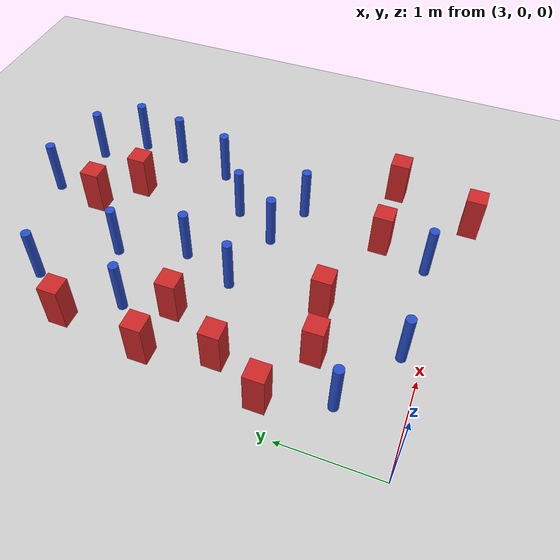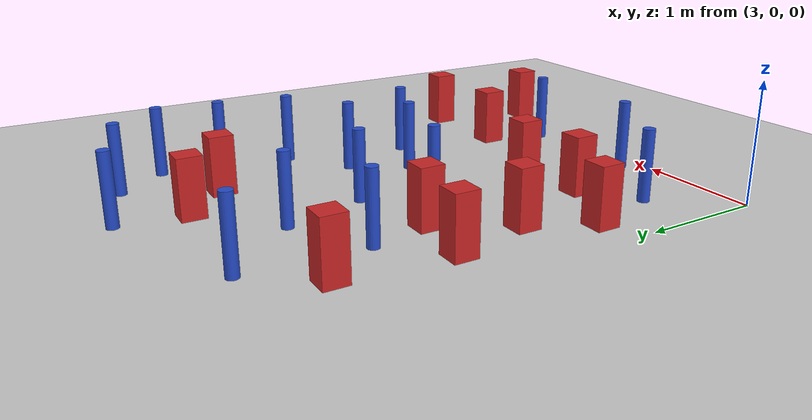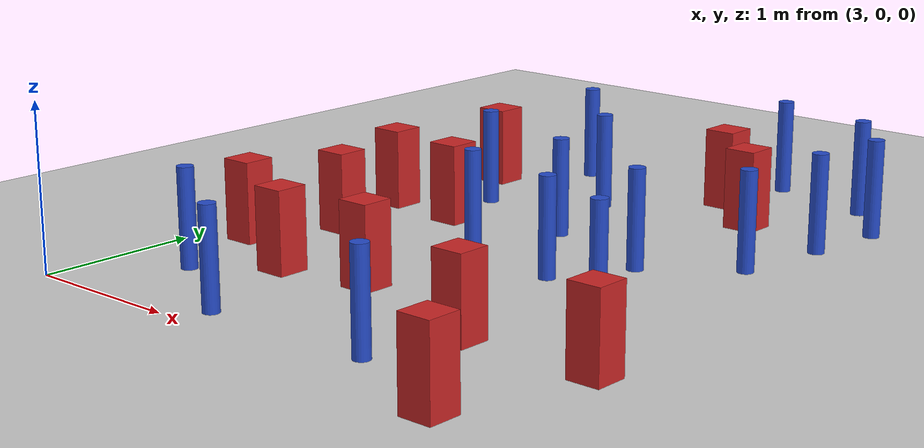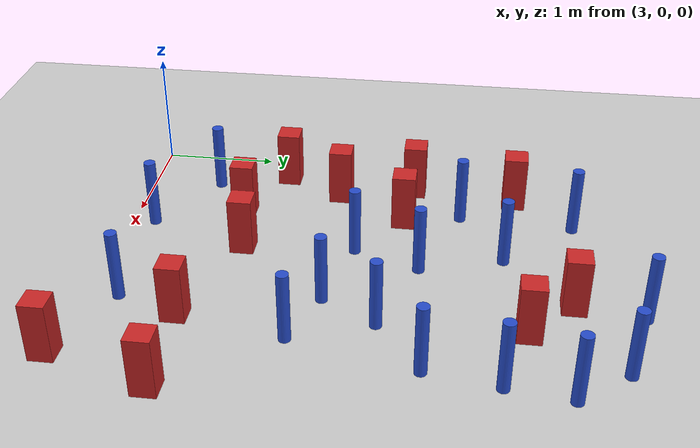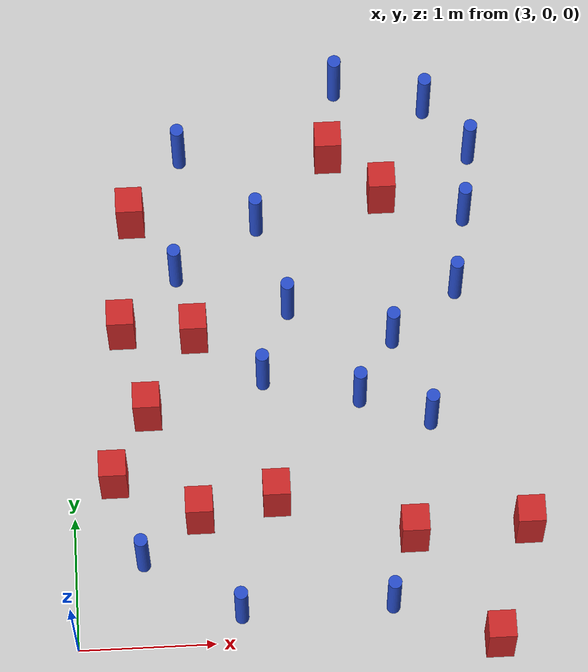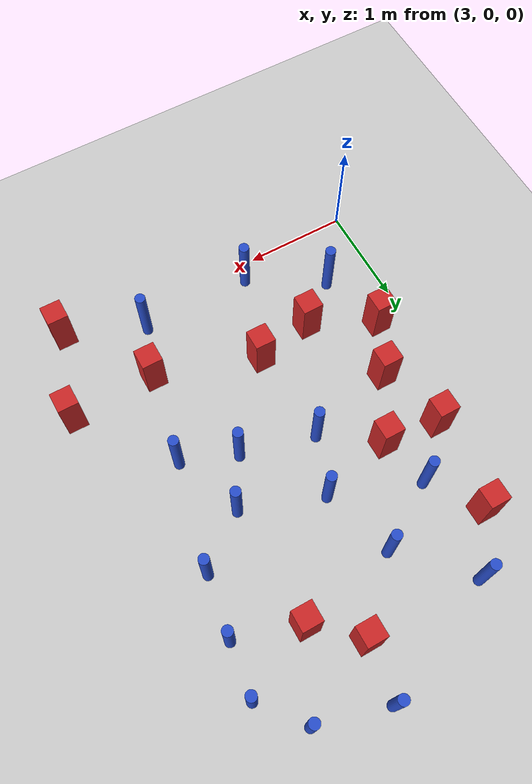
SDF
<sdf version="1.6">
 <world name="default">
  <model name="ground_plane">
   <static>1</static>
   <link name="link">
    <collision name="collision">
     <geometry><plane><normal>0 0 1</normal><size>100 100</size></plane></geometry>
     <surface><friction><ode><mu>100</mu><mu2>50</mu2></ode></friction></surface>
    </collision>
    <visual name="visual">
     <cast_shadows>0</cast_shadows>
     <geometry><plane><normal>0 0 1</normal><size>100 100</size></plane></geometry>
     <material>
      <ambient>1.0 1.0 1.0 1.0</ambient>
      <diffuse>0.8 0.8 0.8 1.0</diffuse>
      <specular>0.01 0.01 0.01 1.000000</specular>
     </material>
    </visual>
   </link>
  </model>
  <model name="pole_obstacle7">
   <static>true</static>
   <pose>4.42884117087 1.99683691813 7.38925637345e-09 -8.471706928e-08 1.24976765177e-08 -1.74513093012e-07</pose>
   <link name="link">
    <pose>0 0 0.3 0 -0 0</pose>
    <inertial>
     <mass>1</mass>
     <inertia><ixx>0.145833</ixx><ixy>0</ixy><ixz>0</ixz><iyy>0.145833</iyy><iyz>0</iyz><izz>0.125</izz></inertia>
    </inertial>
    <collision name="collision">
     <geometry><cylinder><radius>0.05</radius><length>.6</length></cylinder></geometry>
    </collision>
    <visual name="visual">
     <geometry><cylinder><radius>0.05</radius><length>.6</length></cylinder></geometry>
     <material>
      <script><name>Gazebo/Blue</name><uri>file://media/materials/scripts/gazebo.material</uri></script>
     </material>
    </visual>
   </link>
  </model>
  <model name="square_post_obstacle18">
   <static>true</static>
   <pose>4.48623797648 1.04986090024 1.91545236811e-07 -7.35059704564e-06 1.12565212e-07 2.39332434364e-05</pose>
   <link name="link">
    <pose>0 0 0.25 0 -0 0</pose>
    <inertial>
     <mass>100</mass>
     <inertia>
      <ixx>0.166667</ixx>
      <ixy>0</ixy>
      <ixz>0</ixz>
      <iyy>0.166667</iyy>
      <iyz>0</iyz>
      <izz>0.166667</izz>
     </inertia>
    </inertial>
    <collision name="collision"><geometry><box><size>.2 .2 .5</size></box></geometry></collision>
    <visual name="visual">
     <geometry><box><size>.2 .2 .5</size></box></geometry>
     <material>
      <script><name>Gazebo/Red</name><uri>file://media/materials/scripts/gazebo.material</uri></script>
     </material>
    </visual>
   </link>
  </model>
  <model name="square_post_obstacle21">
   <static>true</static>
   <pose>6.04395570483 -0.102435734392 1.91545236811e-07 -7.35059704564e-06 1.12565212e-07 2.39332434364e-05</pose>
   <link name="link">
    <pose>0 0 0.25 0 -0 0</pose>
    <inertial>
     <mass>100</mass>
     <inertia>
      <ixx>0.166667</ixx>
      <ixy>0</ixy>
      <ixz>0</ixz>
      <iyy>0.166667</iyy>
      <iyz>0</iyz>
      <izz>0.166667</izz>
     </inertia>
    </inertial>
    <collision name="collision"><geometry><box><size>.2 .2 .5</size></box></geometry></collision>
    <visual name="visual">
     <geometry><box><size>.2 .2 .5</size></box></geometry>
     <material>
      <script><name>Gazebo/Red</name><uri>file://media/materials/scripts/gazebo.material</uri></script>
     </material>
    </visual>
   </link>
  </model>
  <model name="pole_obstacle19">
   <static>true</static>
   <pose>5.0812405203 4.34473684918 7.38925637345e-09 -8.47170692796e-08 1.24976764786e-08 -1.74513093032e-07</pose>
   <link name="link">
    <pose>0 0 0.3 0 -0 0</pose>
    <inertial>
     <mass>1</mass>
     <inertia><ixx>0.145833</ixx><ixy>0</ixy><ixz>0</ixz><iyy>0.145833</iyy><iyz>0</iyz><izz>0.125</izz></inertia>
    </inertial>
    <collision name="collision">
     <geometry><cylinder><radius>0.05</radius><length>.6</length></cylinder></geometry>
    </collision>
    <visual name="visual">
     <geometry><cylinder><radius>0.05</radius><length>.6</length></cylinder></geometry>
     <material>
      <script><name>Gazebo/Blue</name><uri>file://media/materials/scripts/gazebo.material</uri></script>
     </material>
    </visual>
   </link>
  </model>
  <model name="square_post_obstacle30">
   <static>true</static>
   <pose>5.47710392444 0.726197041636 1.91545236811e-07 -7.35059704564e-06 1.12565212e-07 2.39332434364e-05</pose>
   <link name="link">
    <pose>0 0 0.25 0 -0 0</pose>
    <inertial>
     <mass>100</mass>
     <inertia>
      <ixx>0.166667</ixx>
      <ixy>0</ixy>
      <ixz>0</ixz>
      <iyy>0.166667</iyy>
      <iyz>0</iyz>
      <izz>0.166667</izz>
     </inertia>
    </inertial>
    <collision name="collision"><geometry><box><size>.2 .2 .5</size></box></geometry></collision>
    <visual name="visual">
     <geometry><box><size>.2 .2 .5</size></box></geometry>
     <material>
      <script><name>Gazebo/Red</name><uri>file://media/materials/scripts/gazebo.material</uri></script>
     </material>
    </visual>
   </link>
  </model>
  <model name="pole_obstacle23">
   <static>true</static>
   <pose>3.81328017638 2.8599224622 7.38925637345e-09 -8.47170692798e-08 1.24976764939e-08 -1.74513093025e-07</pose>
   <link name="link">
    <pose>0 0 0.3 0 -0 0</pose>
    <inertial>
     <mass>1</mass>
     <inertia><ixx>0.145833</ixx><ixy>0</ixy><ixz>0</ixz><iyy>0.145833</iyy><iyz>0</iyz><izz>0.125</izz></inertia>
    </inertial>
    <collision name="collision">
     <geometry><cylinder><radius>0.05</radius><length>.6</length></cylinder></geometry>
    </collision>
    <visual name="visual">
     <geometry><cylinder><radius>0.05</radius><length>.6</length></cylinder></geometry>
     <material>
      <script><name>Gazebo/Blue</name><uri>file://media/materials/scripts/gazebo.material</uri></script>
     </material>
    </visual>
   </link>
  </model>
  <model name="pole_obstacle52">
   <static>true</static>
   <pose>5.65788533901 1.61920491972 7.38925637345e-09 -8.471706928e-08 1.24976765134e-08 -1.74513093015e-07</pose>
   <link name="link">
    <pose>0 0 0.3 0 -0 0</pose>
    <inertial>
     <mass>1</mass>
     <inertia><ixx>0.145833</ixx><ixy>0</ixy><ixz>0</ixz><iyy>0.145833</iyy><iyz>0</iyz><izz>0.125</izz></inertia>
    </inertial>
    <collision name="collision">
     <geometry><cylinder><radius>0.05</radius><length>.6</length></cylinder></geometry>
    </collision>
    <visual name="visual">
     <geometry><cylinder><radius>0.05</radius><length>.6</length></cylinder></geometry>
     <material>
      <script><name>Gazebo/Blue</name><uri>file://media/materials/scripts/gazebo.material</uri></script>
     </material>
    </visual>
   </link>
  </model>
  <model name="square_post_obstacle60">
   <static>true</static>
   <pose>3.56521192778 1.76793558898 1.91545236811e-07 -7.35059704564e-06 1.12565212e-07 2.39332434364e-05</pose>
   <link name="link">
    <pose>0 0 0.25 0 -0 0</pose>
    <inertial>
     <mass>100</mass>
     <inertia>
      <ixx>0.166667</ixx>
      <ixy>0</ixy>
      <ixz>0</ixz>
      <iyy>0.166667</iyy>
      <iyz>0</iyz>
      <izz>0.166667</izz>
     </inertia>
    </inertial>
    <collision name="collision"><geometry><box><size>.2 .2 .5</size></box></geometry></collision>
    <visual name="visual">
     <geometry><box><size>.2 .2 .5</size></box></geometry>
     <material>
      <script><name>Gazebo/Red</name><uri>file://media/materials/scripts/gazebo.material</uri></script>
     </material>
    </visual>
   </link>
  </model>
  <model name="pole_obstacle69">
   <static>true</static>
   <pose>4.64017804551 2.5516675536 7.38925637345e-09 -8.47170692798e-08 1.24976764937e-08 -1.74513093023e-07</pose>
   <link name="link">
    <pose>0 0 0.3 0 -0 0</pose>
    <inertial>
     <mass>1</mass>
     <inertia><ixx>0.145833</ixx><ixy>0</ixy><ixz>0</ixz><iyy>0.145833</iyy><iyz>0</iyz><izz>0.125</izz></inertia>
    </inertial>
    <collision name="collision">
     <geometry><cylinder><radius>0.05</radius><length>.6</length></cylinder></geometry>
    </collision>
    <visual name="visual">
     <geometry><cylinder><radius>0.05</radius><length>.6</length></cylinder></geometry>
     <material>
      <script><name>Gazebo/Blue</name><uri>file://media/materials/scripts/gazebo.material</uri></script>
     </material>
    </visual>
   </link>
  </model>
  <model name="pole_obstacle75">
   <static>true</static>
   <pose>5.13959863347 1.82079990731 7.38925637345e-09 -8.471706928e-08 1.24976765134e-08 -1.74513093015e-07</pose>
   <link name="link">
    <pose>0 0 0.3 0 -0 0</pose>
    <inertial>
     <mass>1</mass>
     <inertia><ixx>0.145833</ixx><ixy>0</ixy><ixz>0</ixz><iyy>0.145833</iyy><iyz>0</iyz><izz>0.125</izz></inertia>
    </inertial>
    <collision name="collision">
     <geometry><cylinder><radius>0.05</radius><length>.6</length></cylinder></geometry>
    </collision>
    <visual name="visual">
     <geometry><cylinder><radius>0.05</radius><length>.6</length></cylinder></geometry>
     <material>
      <script><name>Gazebo/Blue</name><uri>file://media/materials/scripts/gazebo.material</uri></script>
     </material>
    </visual>
   </link>
  </model>
  <model name="pole_obstacle79">
   <static>true</static>
   <pose>5.90344295679 2.65675222108 7.38925637345e-09 -8.47170692798e-08 1.24976764937e-08 -1.74513093023e-07</pose>
   <link name="link">
    <pose>0 0 0.3 0 -0 0</pose>
    <inertial>
     <mass>1</mass>
     <inertia><ixx>0.145833</ixx><ixy>0</ixy><ixz>0</ixz><iyy>0.145833</iyy><iyz>0</iyz><izz>0.125</izz></inertia>
    </inertial>
    <collision name="collision">
     <geometry><cylinder><radius>0.05</radius><length>.6</length></cylinder></geometry>
    </collision>
    <visual name="visual">
     <geometry><cylinder><radius>0.05</radius><length>.6</length></cylinder></geometry>
     <material>
      <script><name>Gazebo/Blue</name><uri>file://media/materials/scripts/gazebo.material</uri></script>
     </material>
    </visual>
   </link>
  </model>
  <model name="square_post_obstacle84">
   <static>true</static>
   <pose>3.30220605292 1.25213418225 1.91545236811e-07 -7.35059704564e-06 1.12565212e-07 2.39332434364e-05</pose>
   <link name="link">
    <pose>0 0 0.25 0 -0 0</pose>
    <inertial>
     <mass>100</mass>
     <inertia>
      <ixx>0.166667</ixx>
      <ixy>0</ixy>
      <ixz>0</ixz>
      <iyy>0.166667</iyy>
      <iyz>0</iyz>
      <izz>0.166667</izz>
     </inertia>
    </inertial>
    <collision name="collision"><geometry><box><size>.2 .2 .5</size></box></geometry></collision>
    <visual name="visual">
     <geometry><box><size>.2 .2 .5</size></box></geometry>
     <material>
      <script><name>Gazebo/Red</name><uri>file://media/materials/scripts/gazebo.material</uri></script>
     </material>
    </visual>
   </link>
  </model>
  <model name="pole_obstacle100">
   <static>true</static>
   <pose>3.87284101218 3.83542529778 7.38925637345e-09 -8.47170692798e-08 1.24976764939e-08 -1.74513093025e-07</pose>
   <link name="link">
    <pose>0 0 0.3 0 -0 0</pose>
    <inertial>
     <mass>1</mass>
     <inertia><ixx>0.145833</ixx><ixy>0</ixy><ixz>0</ixz><iyy>0.145833</iyy><iyz>0</iyz><izz>0.125</izz></inertia>
    </inertial>
    <collision name="collision">
     <geometry><cylinder><radius>0.05</radius><length>.6</length></cylinder></geometry>
    </collision>
    <visual name="visual">
     <geometry><cylinder><radius>0.05</radius><length>.6</length></cylinder></geometry>
     <material>
      <script><name>Gazebo/Blue</name><uri>file://media/materials/scripts/gazebo.material</uri></script>
     </material>
    </visual>
   </link>
  </model>
  <model name="square_post_obstacle96">
   <static>true</static>
   <pose>5.00298688856 3.79150272132 1.91545236811e-07 -7.35059704564e-06 1.12565212e-07 2.39332434364e-05</pose>
   <link name="link">
    <pose>0 0 0.25 0 -0 0</pose>
    <inertial>
     <mass>100</mass>
     <inertia>
      <ixx>0.166667</ixx>
      <ixy>0</ixy>
      <ixz>0</ixz>
      <iyy>0.166667</iyy>
      <iyz>0</iyz>
      <izz>0.166667</izz>
     </inertia>
    </inertial>
    <collision name="collision"><geometry><box><size>.2 .2 .5</size></box></geometry></collision>
    <visual name="visual">
     <geometry><box><size>.2 .2 .5</size></box></geometry>
     <material>
      <script><name>Gazebo/Red</name><uri>file://media/materials/scripts/gazebo.material</uri></script>
     </material>
    </visual>
   </link>
  </model>
  <model name="square_post_obstacle111">
   <static>true</static>
   <pose>3.49053614567 3.32802907171 1.91545236811e-07 -7.35059704564e-06 1.12565212e-07 2.39332434364e-05</pose>
   <link name="link">
    <pose>0 0 0.25 0 -0 0</pose>
    <inertial>
     <mass>100</mass>
     <inertia>
      <ixx>0.166667</ixx>
      <ixy>0</ixy>
      <ixz>0</ixz>
      <iyy>0.166667</iyy>
      <iyz>0</iyz>
      <izz>0.166667</izz>
     </inertia>
    </inertial>
    <collision name="collision"><geometry><box><size>.2 .2 .5</size></box></geometry></collision>
    <visual name="visual">
     <geometry><box><size>.2 .2 .5</size></box></geometry>
     <material>
      <script><name>Gazebo/Red</name><uri>file://media/materials/scripts/gazebo.material</uri></script>
     </material>
    </visual>
   </link>
  </model>
  <model name="pole_obstacle132">
   <static>true</static>
   <pose>5.40926353167 2.27947221301 7.38925637345e-09 -8.47170692798e-08 1.24976764937e-08 -1.74513093023e-07</pose>
   <link name="link">
    <pose>0 0 0.3 0 -0 0</pose>
    <inertial>
     <mass>1</mass>
     <inertia><ixx>0.145833</ixx><ixy>0</ixy><ixz>0</ixz><iyy>0.145833</iyy><iyz>0</iyz><izz>0.125</izz></inertia>
    </inertial>
    <collision name="collision">
     <geometry><cylinder><radius>0.05</radius><length>.6</length></cylinder></geometry>
    </collision>
    <visual name="visual">
     <geometry><cylinder><radius>0.05</radius><length>.6</length></cylinder></geometry>
     <material>
      <script><name>Gazebo/Blue</name><uri>file://media/materials/scripts/gazebo.material</uri></script>
     </material>
    </visual>
   </link>
  </model>
  <model name="square_post_obstacle126">
   <static>true</static>
   <pose>5.38953754324 3.43928572763 1.91545236811e-07 -7.35059704564e-06 1.12565212e-07 2.39332434364e-05</pose>
   <link name="link">
    <pose>0 0 0.25 0 -0 0</pose>
    <inertial>
     <mass>100</mass>
     <inertia>
      <ixx>0.166667</ixx>
      <ixy>0</ixy>
      <ixz>0</ixz>
      <iyy>0.166667</iyy>
      <iyz>0</iyz>
      <izz>0.166667</izz>
     </inertia>
    </inertial>
    <collision name="collision"><geometry><box><size>.2 .2 .5</size></box></geometry></collision>
    <visual name="visual">
     <geometry><box><size>.2 .2 .5</size></box></geometry>
     <material>
      <script><name>Gazebo/Red</name><uri>file://media/materials/scripts/gazebo.material</uri></script>
     </material>
    </visual>
   </link>
  </model>
  <model name="pole_obstacle144">
   <static>true</static>
   <pose>6.00311860051 3.24856825847 7.38925637345e-09 -8.47170692798e-08 1.24976764937e-08 -1.74513093023e-07</pose>
   <link name="link">
    <pose>0 0 0.3 0 -0 0</pose>
    <inertial>
     <mass>1</mass>
     <inertia><ixx>0.145833</ixx><ixy>0</ixy><ixz>0</ixz><iyy>0.145833</iyy><iyz>0</iyz><izz>0.125</izz></inertia>
    </inertial>
    <collision name="collision">
     <geometry><cylinder><radius>0.05</radius><length>.6</length></cylinder></geometry>
    </collision>
    <visual name="visual">
     <geometry><cylinder><radius>0.05</radius><length>.6</length></cylinder></geometry>
     <material>
      <script><name>Gazebo/Blue</name><uri>file://media/materials/scripts/gazebo.material</uri></script>
     </material>
    </visual>
   </link>
  </model>
  <model name="pole_obstacle146">
   <static>true</static>
   <pose>4.43510246325 3.24364254026 7.38925637345e-09 -8.47170692798e-08 1.24976764937e-08 -1.74513093023e-07</pose>
   <link name="link">
    <pose>0 0 0.3 0 -0 0</pose>
    <inertial>
     <mass>1</mass>
     <inertia><ixx>0.145833</ixx><ixy>0</ixy><ixz>0</ixz><iyy>0.145833</iyy><iyz>0</iyz><izz>0.125</izz></inertia>
    </inertial>
    <collision name="collision">
     <geometry><cylinder><radius>0.05</radius><length>.6</length></cylinder></geometry>
    </collision>
    <visual name="visual">
     <geometry><cylinder><radius>0.05</radius><length>.6</length></cylinder></geometry>
     <material>
      <script><name>Gazebo/Blue</name><uri>file://media/materials/scripts/gazebo.material</uri></script>
     </material>
    </visual>
   </link>
  </model>
  <model name="square_post_obstacle147">
   <static>true</static>
   <pose>3.92009606219 0.944382096751 1.91545236811e-07 -7.35059704564e-06 1.12565212e-07 2.39332434364e-05</pose>
   <link name="link">
    <pose>0 0 0.25 0 -0 0</pose>
    <inertial>
     <mass>100</mass>
     <inertia>
      <ixx>0.166667</ixx>
      <ixy>0</ixy>
      <ixz>0</ixz>
      <iyy>0.166667</iyy>
      <iyz>0</iyz>
      <izz>0.166667</izz>
     </inertia>
    </inertial>
    <collision name="collision"><geometry><box><size>.2 .2 .5</size></box></geometry></collision>
    <visual name="visual">
     <geometry><box><size>.2 .2 .5</size></box></geometry>
     <material>
      <script><name>Gazebo/Red</name><uri>file://media/materials/scripts/gazebo.material</uri></script>
     </material>
    </visual>
   </link>
  </model>
  <model name="pole_obstacle161">
   <static>true</static>
   <pose>3.49401346607 0.621532051045 7.38925637345e-09 -8.471706928e-08 1.24976765177e-08 -1.74513093012e-07</pose>
   <link name="link">
    <pose>0 0 0.3 0 -0 0</pose>
    <inertial>
     <mass>1</mass>
     <inertia><ixx>0.145833</ixx><ixy>0</ixy><ixz>0</ixz><iyy>0.145833</iyy><iyz>0</iyz><izz>0.125</izz></inertia>
    </inertial>
    <collision name="collision">
     <geometry><cylinder><radius>0.05</radius><length>.6</length></cylinder></geometry>
    </collision>
    <visual name="visual">
     <geometry><cylinder><radius>0.05</radius><length>.6</length></cylinder></geometry>
     <material>
      <script><name>Gazebo/Blue</name><uri>file://media/materials/scripts/gazebo.material</uri></script>
     </material>
    </visual>
   </link>
  </model>
  <model name="pole_obstacle163">
   <static>true</static>
   <pose>6.07373695527 3.76064355327 7.38925637345e-09 -8.47170692798e-08 1.24976764937e-08 -1.74513093023e-07</pose>
   <link name="link">
    <pose>0 0 0.3 0 -0 0</pose>
    <inertial>
     <mass>1</mass>
     <inertia><ixx>0.145833</ixx><ixy>0</ixy><ixz>0</ixz><iyy>0.145833</iyy><iyz>0</iyz><izz>0.125</izz></inertia>
    </inertial>
    <collision name="collision">
     <geometry><cylinder><radius>0.05</radius><length>.6</length></cylinder></geometry>
    </collision>
    <visual name="visual">
     <geometry><cylinder><radius>0.05</radius><length>.6</length></cylinder></geometry>
     <material>
      <script><name>Gazebo/Blue</name><uri>file://media/materials/scripts/gazebo.material</uri></script>
     </material>
    </visual>
   </link>
  </model>
  <model name="square_post_obstacle156">
   <static>true</static>
   <pose>6.31699439927 0.753577580558 1.91545236811e-07 -7.35059704564e-06 1.12565212e-07 2.39332434364e-05</pose>
   <link name="link">
    <pose>0 0 0.25 0 -0 0</pose>
    <inertial>
     <mass>100</mass>
     <inertia>
      <ixx>0.166667</ixx>
      <ixy>0</ixy>
      <ixz>0</ixz>
      <iyy>0.166667</iyy>
      <iyz>0</iyz>
      <izz>0.166667</izz>
     </inertia>
    </inertial>
    <collision name="collision"><geometry><box><size>.2 .2 .5</size></box></geometry></collision>
    <visual name="visual">
     <geometry><box><size>.2 .2 .5</size></box></geometry>
     <material>
      <script><name>Gazebo/Red</name><uri>file://media/materials/scripts/gazebo.material</uri></script>
     </material>
    </visual>
   </link>
  </model>
  <model name="pole_obstacle183">
   <static>true</static>
   <pose>5.75478978546 4.1616096521 7.38925637345e-09 -8.47170692796e-08 1.24976764786e-08 -1.74513093032e-07</pose>
   <link name="link">
    <pose>0 0 0.3 0 -0 0</pose>
    <inertial>
     <mass>1</mass>
     <inertia><ixx>0.145833</ixx><ixy>0</ixy><ixz>0</ixz><iyy>0.145833</iyy><iyz>0</iyz><izz>0.125</izz></inertia>
    </inertial>
    <collision name="collision">
     <geometry><cylinder><radius>0.05</radius><length>.6</length></cylinder></geometry>
    </collision>
    <visual name="visual">
     <geometry><cylinder><radius>0.05</radius><length>.6</length></cylinder></geometry>
     <material>
      <script><name>Gazebo/Blue</name><uri>file://media/materials/scripts/gazebo.material</uri></script>
     </material>
    </visual>
   </link>
  </model>
  <model name="square_post_obstacle177">
   <static>true</static>
   <pose>3.39415489065 2.42739086401 1.91545236811e-07 -7.35059704564e-06 1.12565212e-07 2.39332434364e-05</pose>
   <link name="link">
    <pose>0 0 0.25 0 -0 0</pose>
    <inertial>
     <mass>100</mass>
     <inertia>
      <ixx>0.166667</ixx>
      <ixy>0</ixy>
      <ixz>0</ixz>
      <iyy>0.166667</iyy>
      <iyz>0</iyz>
      <izz>0.166667</izz>
     </inertia>
    </inertial>
    <collision name="collision"><geometry><box><size>.2 .2 .5</size></box></geometry></collision>
    <visual name="visual">
     <geometry><box><size>.2 .2 .5</size></box></geometry>
     <material>
      <script><name>Gazebo/Red</name><uri>file://media/materials/scripts/gazebo.material</uri></script>
     </material>
    </visual>
   </link>
  </model>
  <model name="pole_obstacle194">
   <static>true</static>
   <pose>4.19426953487 0.191075380276 7.38925637345e-09 -8.471706928e-08 1.24976765151e-08 -1.74513093014e-07</pose>
   <link name="link">
    <pose>0 0 0.3 0 -0 0</pose>
    <inertial>
     <mass>1</mass>
     <inertia><ixx>0.145833</ixx><ixy>0</ixy><ixz>0</ixz><iyy>0.145833</iyy><iyz>0</iyz><izz>0.125</izz></inertia>
    </inertial>
    <collision name="collision">
     <geometry><cylinder><radius>0.05</radius><length>.6</length></cylinder></geometry>
    </collision>
    <visual name="visual">
     <geometry><cylinder><radius>0.05</radius><length>.6</length></cylinder></geometry>
     <material>
      <script><name>Gazebo/Blue</name><uri>file://media/materials/scripts/gazebo.material</uri></script>
     </material>
    </visual>
   </link>
  </model>
  <model name="pole_obstacle202">
   <static>true</static>
   <pose>5.29535229701 0.21423760296 7.38925637345e-09 -8.471706928e-08 1.24976765136e-08 -1.74513093014e-07</pose>
   <link name="link">
    <pose>0 0 0.3 0 -0 0</pose>
    <inertial>
     <mass>1</mass>
     <inertia><ixx>0.145833</ixx><ixy>0</ixy><ixz>0</ixz><iyy>0.145833</iyy><iyz>0</iyz><izz>0.125</izz></inertia>
    </inertial>
    <collision name="collision">
     <geometry><cylinder><radius>0.05</radius><length>.6</length></cylinder></geometry>
    </collision>
    <visual name="visual">
     <geometry><cylinder><radius>0.05</radius><length>.6</length></cylinder></geometry>
     <material>
      <script><name>Gazebo/Blue</name><uri>file://media/materials/scripts/gazebo.material</uri></script>
     </material>
    </visual>
   </link>
  </model>
  <model name="square_post_obstacle217">
   <static>true</static>
   <pose>3.93079175102 2.36823191891 1.91545236811e-07 -7.35059704564e-06 1.12565212e-07 2.39332434364e-05</pose>
   <link name="link">
    <pose>0 0 0.25 0 -0 0</pose>
    <inertial>
     <mass>100</mass>
     <inertia>
      <ixx>0.166667</ixx>
      <ixy>0</ixy>
      <ixz>0</ixz>
      <iyy>0.166667</iyy>
      <iyz>0</iyz>
      <izz>0.166667</izz>
     </inertia>
    </inertial>
    <collision name="collision"><geometry><box><size>.2 .2 .5</size></box></geometry></collision>
    <visual name="visual">
     <geometry><box><size>.2 .2 .5</size></box></geometry>
     <material>
      <script><name>Gazebo/Red</name><uri>file://media/materials/scripts/gazebo.material</uri></script>
     </material>
    </visual>
   </link>
  </model>
 </world>
</sdf>
